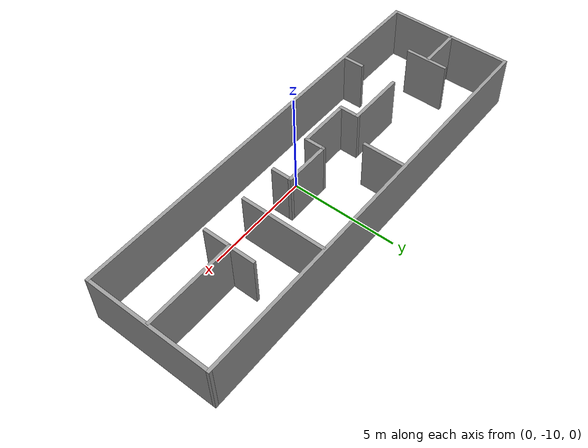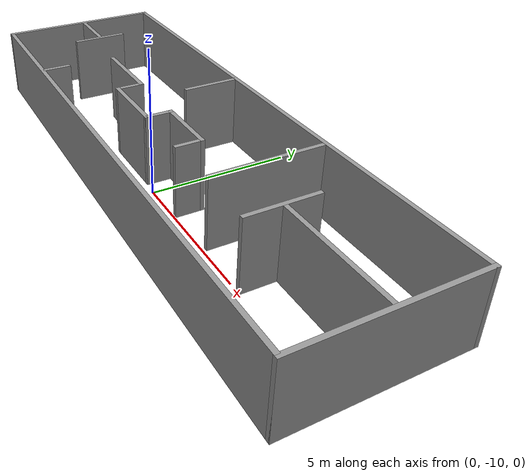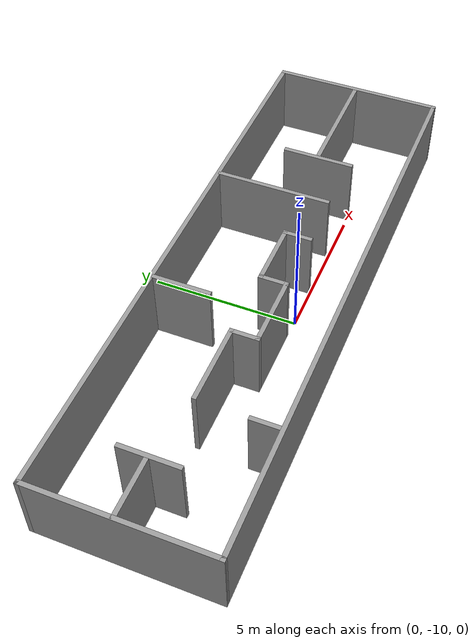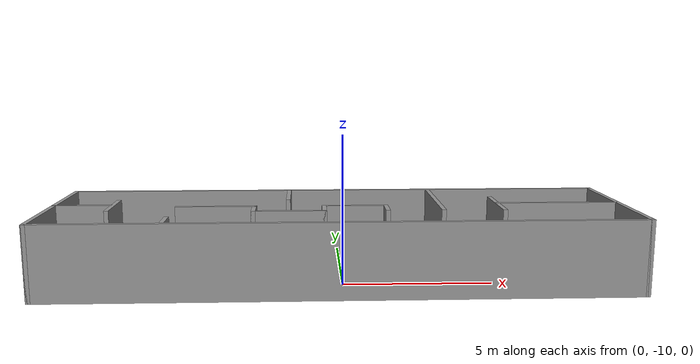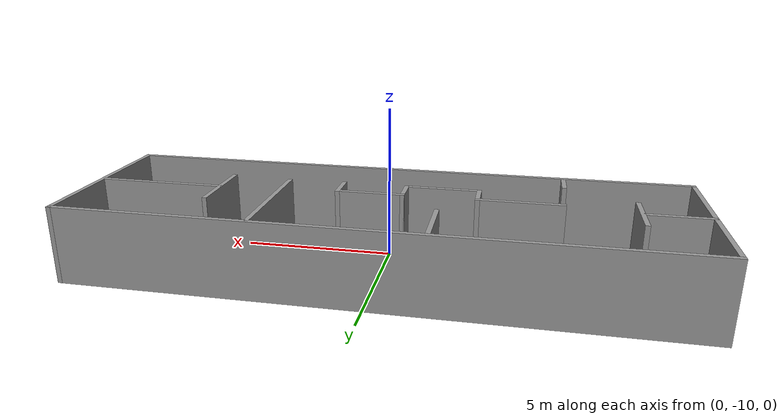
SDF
<?xml version='1.0'?>
<sdf version='1.6'>
  <model name='my_house'>
    <pose frame=''>-0.084546 -8.79583 0 0 -0 0</pose>
    <link name='Wall_100'>
      <collision name='Wall_100_Collision'>
        <geometry>
          <box>
            <size>4 0.15 2.5</size>
          </box>
        </geometry>
        <pose frame=''>0 0 1.25 0 -0 0</pose>
      </collision>
      <visual name='Wall_100_Visual'>
        <pose frame=''>0 0 1.25 0 -0 0</pose>
        <geometry>
          <box>
            <size>4 0.15 2.5</size>
          </box>
        </geometry>
        <material>
          <script>
            <uri>file://media/materials/scripts/gazebo.material</uri>
            <name>Gazebo/Grey</name>
          </script>
          <ambient>1 1 1 1</ambient>
        </material>
        <meta>
          <layer>0</layer>
        </meta>
      </visual>
      <pose frame=''>3.45015 0.916302 0 0 -0 1.5708</pose>
    </link>
    <link name='Wall_102'>
      <collision name='Wall_102_Collision'>
        <geometry>
          <box>
            <size>2.75 0.15 2.5</size>
          </box>
        </geometry>
        <pose frame=''>0 0 1.25 0 -0 0</pose>
      </collision>
      <visual name='Wall_102_Visual'>
        <pose frame=''>0 0 1.25 0 -0 0</pose>
        <geometry>
          <box>
            <size>2.75 0.15 2.5</size>
          </box>
        </geometry>
        <material>
          <script>
            <uri>file://media/materials/scripts/gazebo.material</uri>
            <name>Gazebo/Grey</name>
          </script>
          <ambient>1 1 1 1</ambient>
        </material>
        <meta>
          <layer>0</layer>
        </meta>
      </visual>
      <pose frame=''>-4.16218 -0.233051 0 0 -0 3.14159</pose>
    </link>
    <link name='Wall_104'>
      <collision name='Wall_104_Collision'>
        <geometry>
          <box>
            <size>1 0.15 2.5</size>
          </box>
        </geometry>
        <pose frame=''>0 0 1.25 0 -0 0</pose>
      </collision>
      <visual name='Wall_104_Visual'>
        <pose frame=''>0 0 1.25 0 -0 0</pose>
        <geometry>
          <box>
            <size>1 0.15 2.5</size>
          </box>
        </geometry>
        <material>
          <script>
            <uri>file://media/materials/scripts/gazebo.material</uri>
            <name>Gazebo/Grey</name>
          </script>
          <ambient>1 1 1 1</ambient>
        </material>
        <meta>
          <layer>0</layer>
        </meta>
      </visual>
      <pose frame=''>-5.53822 -2.39354 0 0 -0 1.5708</pose>
    </link>
    <link name='Wall_74'>
      <collision name='Wall_74_Collision'>
        <geometry>
          <box>
            <size>19.5 0.15 2.5</size>
          </box>
        </geometry>
        <pose frame=''>0 0 1.25 0 -0 0</pose>
      </collision>
      <visual name='Wall_74_Visual'>
        <pose frame=''>0 0 1.25 0 -0 0</pose>
        <geometry>
          <box>
            <size>19.5 0.15 2.5</size>
          </box>
        </geometry>
        <material>
          <script>
            <uri>file://media/materials/scripts/gazebo.material</uri>
            <name>Gazebo/Grey</name>
          </script>
          <ambient>1 1 1 1</ambient>
        </material>
        <meta>
          <layer>0</layer>
        </meta>
      </visual>
      <pose frame=''>0 -2.925 0 0 -0 0</pose>
    </link>
    <link name='Wall_75'>
      <collision name='Wall_75_Collision'>
        <geometry>
          <box>
            <size>6 0.15 2.5</size>
          </box>
        </geometry>
        <pose frame=''>0 0 1.25 0 -0 0</pose>
      </collision>
      <visual name='Wall_75_Visual'>
        <pose frame=''>0 0 1.25 0 -0 0</pose>
        <geometry>
          <box>
            <size>6 0.15 2.5</size>
          </box>
        </geometry>
        <material>
          <script>
            <uri>file://media/materials/scripts/gazebo.material</uri>
            <name>Gazebo/Grey</name>
          </script>
          <ambient>1 1 1 1</ambient>
        </material>
        <meta>
          <layer>0</layer>
        </meta>
      </visual>
      <pose frame=''>9.675 0 0 0 -0 1.5708</pose>
    </link>
    <link name='Wall_76'>
      <collision name='Wall_76_Collision'>
        <geometry>
          <box>
            <size>19.5 0.15 2.5</size>
          </box>
        </geometry>
        <pose frame=''>0 0 1.25 0 -0 0</pose>
      </collision>
      <visual name='Wall_76_Visual'>
        <pose frame=''>0 0 1.25 0 -0 0</pose>
        <geometry>
          <box>
            <size>19.5 0.15 2.5</size>
          </box>
        </geometry>
        <material>
          <script>
            <uri>file://media/materials/scripts/gazebo.material</uri>
            <name>Gazebo/Grey</name>
          </script>
          <ambient>1 1 1 1</ambient>
        </material>
        <meta>
          <layer>0</layer>
        </meta>
      </visual>
      <pose frame=''>0 2.925 0 0 -0 3.14159</pose>
    </link>
    <link name='Wall_77'>
      <collision name='Wall_77_Collision'>
        <geometry>
          <box>
            <size>6 0.15 2.5</size>
          </box>
        </geometry>
        <pose frame=''>0 0 1.25 0 -0 0</pose>
      </collision>
      <visual name='Wall_77_Visual'>
        <pose frame=''>0 0 1.25 0 -0 0</pose>
        <geometry>
          <box>
            <size>6 0.15 2.5</size>
          </box>
        </geometry>
        <material>
          <script>
            <uri>file://media/materials/scripts/gazebo.material</uri>
            <name>Gazebo/Grey</name>
          </script>
          <ambient>1 1 1 1</ambient>
        </material>
        <meta>
          <layer>0</layer>
        </meta>
      </visual>
      <pose frame=''>-9.675 0 0 0 0 -1.5708</pose>
    </link>
    <link name='Wall_79'>
      <collision name='Wall_79_Collision'>
        <geometry>
          <box>
            <size>2 0.15 2.5</size>
          </box>
        </geometry>
        <pose frame=''>0 0 1.25 0 -0 0</pose>
      </collision>
      <visual name='Wall_79_Visual'>
        <pose frame=''>0 0 1.25 0 -0 0</pose>
        <geometry>
          <box>
            <size>2 0.15 2.5</size>
          </box>
        </geometry>
        <material>
          <script>
            <uri>file://media/materials/scripts/gazebo.material</uri>
            <name>Gazebo/Grey</name>
          </script>
          <ambient>1 1 1 1</ambient>
        </material>
        <meta>
          <layer>0</layer>
        </meta>
      </visual>
      <pose frame=''>-8.71958 0.131959 0 0 -0 0</pose>
    </link>
    <link name='Wall_81'>
      <collision name='Wall_81_Collision'>
        <geometry>
          <box>
            <size>2 0.15 2.5</size>
          </box>
        </geometry>
        <pose frame=''>0 0 1.25 0 -0 0</pose>
      </collision>
      <visual name='Wall_81_Visual'>
        <pose frame=''>0 0 1.25 0 -0 0</pose>
        <geometry>
          <box>
            <size>2 0.15 2.5</size>
          </box>
        </geometry>
        <material>
          <script>
            <uri>file://media/materials/scripts/gazebo.material</uri>
            <name>Gazebo/Grey</name>
          </script>
          <ambient>1 1 1 1</ambient>
        </material>
        <meta>
          <layer>0</layer>
        </meta>
      </visual>
      <pose frame=''>-7.68265 0.089067 0 0 0 -1.5708</pose>
    </link>
    <link name='Wall_83'>
      <collision name='Wall_83_Collision'>
        <geometry>
          <box>
            <size>4.25 0.15 2.5</size>
          </box>
        </geometry>
        <pose frame=''>0 0 1.25 0 -0 0</pose>
      </collision>
      <visual name='Wall_83_Visual'>
        <pose frame=''>0 0 1.25 0 -0 0</pose>
        <geometry>
          <box>
            <size>4.25 0.15 2.5</size>
          </box>
        </geometry>
        <material>
          <script>
            <uri>file://media/materials/scripts/gazebo.material</uri>
            <name>Gazebo/Grey</name>
          </script>
          <ambient>1 1 1 1</ambient>
        </material>
        <meta>
          <layer>0</layer>
        </meta>
      </visual>
      <pose frame=''>7.55969 0.055915 0 0 -0 3.14159</pose>
    </link>
    <link name='Wall_86'>
      <collision name='Wall_86_Collision'>
        <geometry>
          <box>
            <size>2.5 0.15 2.5</size>
          </box>
        </geometry>
        <pose frame=''>0 0 1.25 0 -0 0</pose>
      </collision>
      <visual name='Wall_86_Visual'>
        <pose frame=''>0 0 1.25 0 -0 0</pose>
        <geometry>
          <box>
            <size>2.5 0.15 2.5</size>
          </box>
        </geometry>
        <material>
          <script>
            <uri>file://media/materials/scripts/gazebo.material</uri>
            <name>Gazebo/Grey</name>
          </script>
          <ambient>1 1 1 1</ambient>
        </material>
        <meta>
          <layer>0</layer>
        </meta>
      </visual>
      <pose frame=''>5.47292 0.029424 0 0 -0 1.5708</pose>
    </link>
    <link name='Wall_92'>
      <collision name='Wall_92_Collision'>
        <geometry>
          <box>
            <size>1 0.15 2.5</size>
          </box>
        </geometry>
        <pose frame=''>0 0 1.25 0 -0 0</pose>
      </collision>
      <visual name='Wall_92_Visual'>
        <pose frame=''>0 0 1.25 0 -0 0</pose>
        <geometry>
          <box>
            <size>1 0.15 2.5</size>
          </box>
        </geometry>
        <material>
          <script>
            <uri>file://media/materials/scripts/gazebo.material</uri>
            <name>Gazebo/Grey</name>
          </script>
          <ambient>1 1 1 1</ambient>
        </material>
        <meta>
          <layer>0</layer>
        </meta>
      </visual>
      <pose frame=''>-2.86218 -0.658051 0 0 0 -1.5708</pose>
    </link>
    <link name='Wall_93'>
      <collision name='Wall_93_Collision'>
        <geometry>
          <box>
            <size>2.5 0.15 2.5</size>
          </box>
        </geometry>
        <pose frame=''>0 0 1.25 0 -0 0</pose>
      </collision>
      <visual name='Wall_93_Visual'>
        <pose frame=''>0 0 1.25 0 -0 0</pose>
        <geometry>
          <box>
            <size>2.5 0.15 2.5</size>
          </box>
        </geometry>
        <material>
          <script>
            <uri>file://media/materials/scripts/gazebo.material</uri>
            <name>Gazebo/Grey</name>
          </script>
          <ambient>1 1 1 1</ambient>
        </material>
        <meta>
          <layer>0</layer>
        </meta>
      </visual>
      <pose frame=''>-1.68718 -1.08305 0 0 -0 0</pose>
    </link>
    <link name='Wall_94'>
      <collision name='Wall_94_Collision'>
        <geometry>
          <box>
            <size>1 0.15 2.5</size>
          </box>
        </geometry>
        <pose frame=''>0 0 1.25 0 -0 0</pose>
      </collision>
      <visual name='Wall_94_Visual'>
        <pose frame=''>0 0 1.25 0 -0 0</pose>
        <geometry>
          <box>
            <size>1 0.15 2.5</size>
          </box>
        </geometry>
        <material>
          <script>
            <uri>file://media/materials/scripts/gazebo.material</uri>
            <name>Gazebo/Grey</name>
          </script>
          <ambient>1 1 1 1</ambient>
        </material>
        <meta>
          <layer>0</layer>
        </meta>
      </visual>
      <pose frame=''>-0.512176 -0.658051 0 0 -0 1.5708</pose>
    </link>
    <link name='Wall_95'>
      <collision name='Wall_95_Collision'>
        <geometry>
          <box>
            <size>2.25 0.15 2.5</size>
          </box>
        </geometry>
        <pose frame=''>0 0 1.25 0 -0 0</pose>
      </collision>
      <visual name='Wall_95_Visual'>
        <pose frame=''>0 0 1.25 0 -0 0</pose>
        <geometry>
          <box>
            <size>2.25 0.15 2.5</size>
          </box>
        </geometry>
        <material>
          <script>
            <uri>file://media/materials/scripts/gazebo.material</uri>
            <name>Gazebo/Grey</name>
          </script>
          <ambient>1 1 1 1</ambient>
        </material>
        <meta>
          <layer>0</layer>
        </meta>
      </visual>
      <pose frame=''>0.537824 -0.233051 0 0 -0 0</pose>
    </link>
    <link name='Wall_96'>
      <collision name='Wall_96_Collision'>
        <geometry>
          <box>
            <size>1 0.15 2.5</size>
          </box>
        </geometry>
        <pose frame=''>0 0 1.25 0 -0 0</pose>
      </collision>
      <visual name='Wall_96_Visual'>
        <pose frame=''>0 0 1.25 0 -0 0</pose>
        <geometry>
          <box>
            <size>1 0.15 2.5</size>
          </box>
        </geometry>
        <material>
          <script>
            <uri>file://media/materials/scripts/gazebo.material</uri>
            <name>Gazebo/Grey</name>
          </script>
          <ambient>1 1 1 1</ambient>
        </material>
        <meta>
          <layer>0</layer>
        </meta>
      </visual>
      <pose frame=''>1.58782 -0.658051 0 0 0 -1.5708</pose>
    </link>
    <link name='Wall_98'>
      <collision name='Wall_98_Collision'>
        <geometry>
          <box>
            <size>2 0.15 2.5</size>
          </box>
        </geometry>
        <pose frame=''>0 0 1.25 0 -0 0</pose>
      </collision>
      <visual name='Wall_98_Visual'>
        <pose frame=''>0 0 1.25 0 -0 0</pose>
        <geometry>
          <box>
            <size>2 0.15 2.5</size>
          </box>
        </geometry>
        <material>
          <script>
            <uri>file://media/materials/scripts/gazebo.material</uri>
            <name>Gazebo/Grey</name>
          </script>
          <ambient>1 1 1 1</ambient>
        </material>
        <meta>
          <layer>0</layer>
        </meta>
      </visual>
      <pose frame=''>-1.75124 1.90865 0 0 -0 1.5708</pose>
    </link>
    <static>1</static>
  </model>
</sdf>
